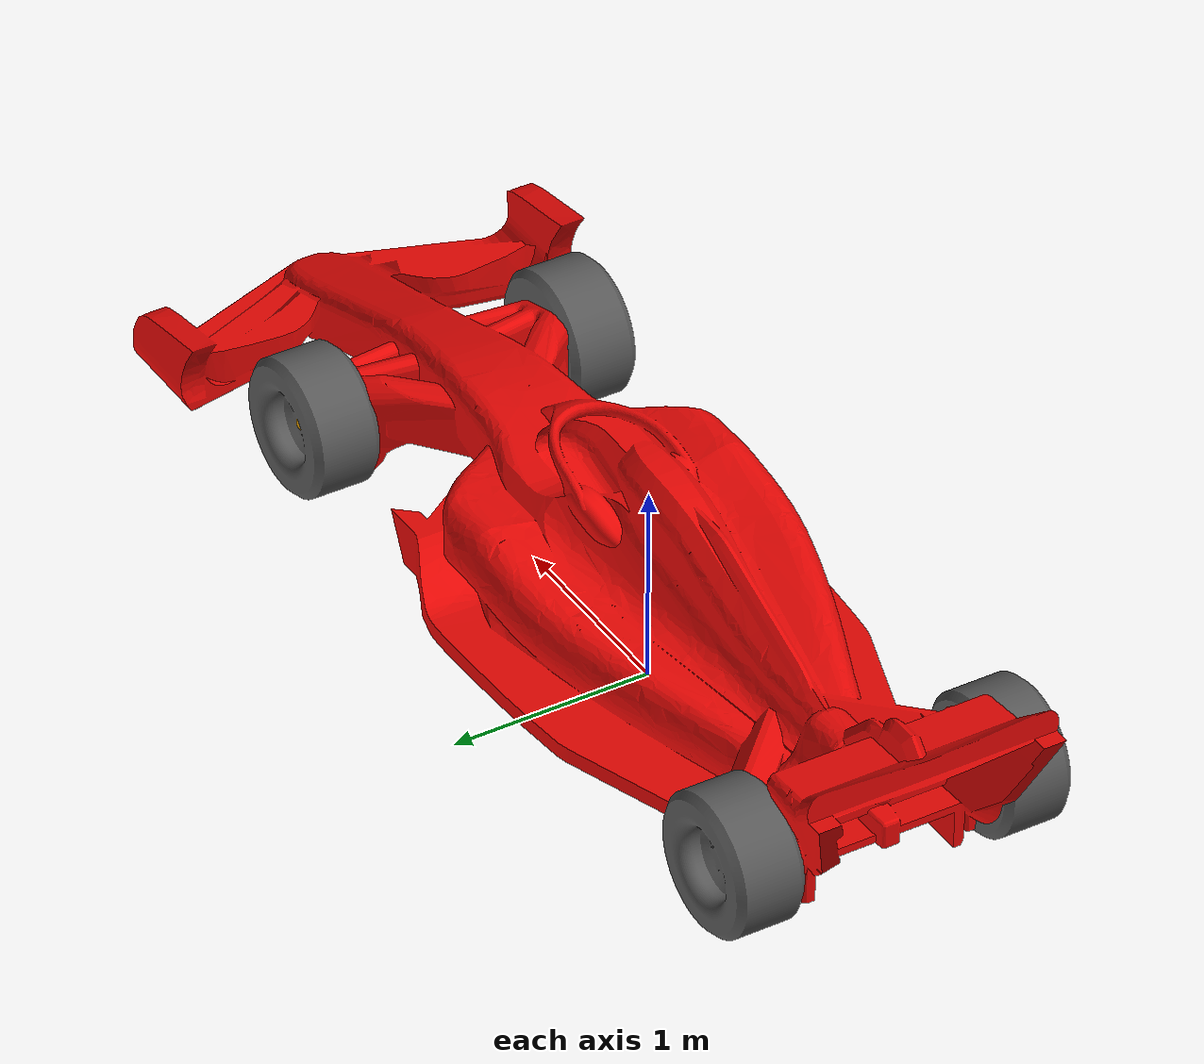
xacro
<?xml version="1.0"?>

<robot xmlns:xacro="http://www.ros.org/wiki/xacro" name="formula">

    <xacro:arg name="gpu" default="false"/>
    <xacro:property name="gpu" value="$(arg gpu)" />
    <xacro:arg name="organize_cloud" default="false"/>
    <xacro:property name="organize_cloud" value="$(arg organize_cloud)" />

    <!-- Include -->
    <xacro:include filename="$(find spawn_car)/model/formula/urdf/bases/formula_body.urdf.xacro"/>
    <xacro:include filename="$(find spawn_car)/model/formula/urdf/wheels/formula_suspension.urdf.xacro"/>
    <xacro:include filename="$(find spawn_car)/model/formula/urdf/vehicle_properties.urdf.xacro"/>
    <xacro:include filename="$(find spawn_car)/model/formula/urdf/sensors/camera.urdf.xacro"/>
    <xacro:include filename="$(find spawn_car)/model/formula/urdf/sensors/vlp-16.urdf.xacro"/>
    <!-- Robots Elements -->
    <xacro:formula_base name="formula"/>
    <xacro:Front_Right_Wheel/>
    <xacro:Front_Left_Wheel/>
    <xacro:Rear_Right_Wheel/>
    <xacro:Rear_Left_Wheel/>

      <gazebo>
        <plugin name="p3d" filename="libgazebo_ros_p3d.so">
          <bodyName>chassis</bodyName>
          <topicName>base_pose_ground_truth</topicName>
          <frameName>map</frameName>
          <updateRate>100.0</updateRate>
        </plugin>
      </gazebo>

      <gazebo>
        <plugin name="gazebo_ros_control" filename="libgazebo_ros_control.so">
          <robotNamespace>/formula_model</robotNamespace>
          <!--The two lines below came from: https://answers.ros.org/question/292444/gazebo_ros_control-plugin-gazeboroscontrolplugin-missing-legacymodens-defaultrobothwsim/-->
          <robotSimType>gazebo_ros_control/DefaultRobotHWSim</robotSimType>
          <legacyModeNS>true</legacyModeNS>
        </plugin>
      </gazebo>

      <transmission name="front_left_steer_trans">
        <type>transmission_interface/SimpleTransmission</type>
        <actuator name="left_steer">
          <mechanicalReduction>1</mechanicalReduction>
        </actuator>
          <joint name="front_left_steer_joint">

          <!--this is a  mechanism for ros_control, it can be position, velocity, effort or something
              to communicate with hardware. See: https://wiki.ros.org/ros_control-->
            <hardwareInterface>hardware_interface/PositionJointInterface</hardwareInterface>
          </joint>
      </transmission>

      <transmission name="front_right_steer_trans">
        <type>transmission_interface/SimpleTransmission</type>
        <actuator name="right_steer">
          <mechanicalReduction>1</mechanicalReduction>
        </actuator>
          <joint name="front_right_steer_joint">
            <hardwareInterface>hardware_interface/PositionJointInterface</hardwareInterface>
          </joint>
      </transmission>

      <transmission name="rear_left_wheel_trans">
        <type>transmission_interface/SimpleTransmission</type>
        <actuator name="rear_left_motor">
          <mechanicalReduction>1</mechanicalReduction>
        </actuator>
          <joint name="rear_left_wheel_joint">
            <hardwareInterface>hardware_interface/VelocityJointInterface</hardwareInterface>
          </joint>
      </transmission>

      <transmission name="rear_right_wheel_trans">
        <type>transmission_interface/SimpleTransmission</type>
        <actuator name="rear_right_motor">
          <mechanicalReduction>1</mechanicalReduction>
        </actuator>
          <joint name="rear_right_wheel_joint">
            <hardwareInterface>hardware_interface/VelocityJointInterface</hardwareInterface>
          </joint>
      </transmission>

</robot>

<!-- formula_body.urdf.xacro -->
<!--
Created on Thu Jan 18 2024

@author: hifzhil
-->
<robot xmlns:xacro="http://www.ros.org/wiki/xacro" name="formula">
    <xacro:include filename="$(find spawn_car)/model/formula/urdf/vehicle_properties.urdf.xacro"/>
    <xacro:include filename="$(find spawn_car)/model/formula/urdf/bases/formula_body.gazebo.xacro"/>

    <material name="chassis_mat">
        <color rgba="0.2 0.2 0.2 1"/>
        <!-- grey -->
    </material>

    <material name="sf24_livery" >
        <color rgba="0.91 0.03 0.02 1.0" />
    </material>

    <xacro:macro name="formula_base" params="name">
        <link name="dummy">
            <visual>
                <origin xyz="0 0 0" rpy="0 0 0"/>
                <geometry>
                    <box size="0.001 0.001 0.001"/>
                </geometry>
            </visual>
        </link>

        <joint name="world_to_vehicle_center" type="fixed">
            <parent link="dummy"/>
            <child link="chassis"/>
            <origin xyz="0.0 0.0 ${ground_clearance + (chassis_thickness/2)}"/>
            <axis xyz = "0 0 1"/>
        </joint>

        <link name="chassis">

            <visual>
                <origin xyz="0.42 -0.015 0.22" rpy="0 0 ${degree_270}"/>
                <geometry>
                  <mesh filename="file://$(find spawn_car)/model/formula/meshes/F1_2023_halo_livery.stl" scale="0.03 0.03 0.03"/>
                </geometry>

                <material name="sf24_livery" >
                    <color rgba="0.91 0.03 0.02 1.0" />
                </material>
            </visual>

            <collision>
                <origin xyz="0.42 -0.015 0.0" rpy="0 0 0"/>
                <geometry>
                    <box size="${car_length} ${car_width} ${car_height - 0.6} "/>
                </geometry>
                <material name="sf24_livery" >
                    <color rgba="0.91 0.03 0.02 1.0" />
                </material>
            </collision>

            <xacro:inertia_of_body/>
        </link>
    </xacro:macro>

</robot>

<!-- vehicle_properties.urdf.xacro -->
<!--
Created on Thu Jan 18 12:02:12 2024

@author: hifzhil
-->

<robot name="formula_properties" xmlns:xacro="http://www.ros.org/wiki/xacro">
    <!-- my name is formula-->

    <!-- CONSTANT -->
    <xacro:property name = "degree_90" value="1.57079633"/>
    <xacro:property name = "degree_180" value="3.14159265"/>
    <xacro:property name = "degree_270" value="4.71239"/>
    <xacro:property name = "degree_360" value="6.28319"/>

    <xacro:property name="car_length" value="5.688" />
    <xacro:property name="car_width" value="2.00" />
    <xacro:property name="car_height" value="0.95" />
    <xacro:property name="car_mass" value="798.0" />

    <xacro:property name="front_overhang" value="1.225" />
    <xacro:property name="rear_overhang" value="0.810" />

    <!-- misalkan formula adalah balok -->
    <xacro:property name="vehicle_volume" value="${car_length*car_width*car_height}"/>

    <xacro:property name="ground_clearance" value="0.036" />
    <xacro:property name="wheel_base" value="3.663" />
    <!-- chassis -->
    <xacro:property name="chassis_width" value="2.00" />
    <xacro:property name="chassis_length" value="5.688" />
    <xacro:property name="chassis_thickness" value="0.95" />
    <xacro:property name="chassis_mass" value="798.0" />
       <!-- variable -->

    <!-- aluminium density is 2.7 g/cm³ or 2700 kg/m3-->
    <xacro:property name="body_density" value="2700.0" />
    <!-- density of all tyre brands is nearly the same which is around 1.1 gr/cm3 or 1100 kg/m3 -->
    <xacro:property name="wheel_density" value="1100.0" />

    <!-- fixed transformation
        this value on rad. 1.570795 is a phi/2
    -->
    <xacro:property name="wheel_cylindrical_transform" value="1.570795" />

    <!-- mass -->
    <!-- let assume the mass of box same as half aluminium at it size-->
    <xacro:property name="body_mass" value="${body_density*body_volume*(1/2)}"/>
    <xacro:property name="wheel_mass" value="${wheel_density*wheel_volume}"/>

    <xacro:property name="front_tyre_radius" value="0.360"/>
    <xacro:property name="front_tyre_width" value="0.305"/>
    <xacro:property name="front_tyre_mass" value="10.0"/>

    <xacro:property name="rear_tyre_radius" value="0.360"/>
    <xacro:property name="rear_tyre_width" value="0.405"/>
    <xacro:property name="rear_tyre_mass" value="10.0"/>

    <xacro:property name="front_track" value="1.35" />
    <xacro:property name="rear_track" value="1.35" />

    <!-- moment inertia of wheel -->
    <xacro:property name="Iz_wheel" value="${0.5*wheel_mass*wheel_radius*wheel_radius}"/>
    <xacro:property name="I_wheel" value="${1/12*wheel_mass*(3*wheel_radius*wheel_radius + wheel_length*wheel_length)}"/>

  <!-- this is macro that we can call it anywhere on code
      it defines all inertia component on the wheel
  -->
    <xacro:macro name="inertia_of_wheel">
        <inertial>
            <origin rpy="0 0 0" xyz="0 0 0"/>
            <mass value="${wheel_mass}"/>
            <inertia
                ixx="${I_wheel}"
                ixy="0.0"
                ixz="0.0"
                iyy="${I_wheel}"
                iyz="0.0"
                izz="${Iz_wheel}"
            />
        </inertial>
    </xacro:macro>

    <xacro:macro name="inertia_of_body">
        <inertial>
            <origin rpy="0 0 0" xyz="0 0 0"/>
            <mass value="${chassis_mass}"/>
            <inertia
                ixy="0.0"
                ixz="0.0"
                iyz="0.0"
                ixx = "${(1/12)*chassis_mass*(chassis_width*chassis_width + chassis_thickness*chassis_thickness)}"
                iyy = "${(1/12)*chassis_mass*(chassis_length*chassis_length + chassis_thickness*chassis_thickness)}"
                izz = "${(1/12)*chassis_mass*(chassis_length*chassis_length + chassis_width*chassis_width)}"
            />
        </inertial>
    </xacro:macro>
</robot>

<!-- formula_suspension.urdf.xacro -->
<!--
Created on Sat Jan 20 2024

@author: hifzhil
-->
<robot xmlns:xacro="http://www.ros.org/wiki/xacro" name="suspension urdf">

    <material name="pirelli" >
        <color rgba="0.35 0.35 0.35 1.0" />
    </material>

    <xacro:include filename="$(find spawn_car)/model/formula/urdf/wheels/suspension.gazebo.xacro"/>
    <xacro:include filename="$(find spawn_car)/model/formula/urdf/vehicle_properties.urdf.xacro"/>

    <xacro:property name="Iz_rear_wheel" value="${0.5*rear_tyre_mass*rear_tyre_radius*rear_tyre_radius}"/>
    <xacro:property name="I_rear_wheel" value="${1/12*rear_tyre_mass*(3*rear_tyre_radius*rear_tyre_radius + rear_tyre_width*rear_tyre_width)}"/>

    <xacro:property name="Iz_front_wheel" value="${0.5*front_tyre_mass*front_tyre_radius*front_tyre_radius}"/>
    <xacro:property name="I_front_wheel" value="${1/12*front_tyre_mass*(3*front_tyre_radius*front_tyre_radius + front_tyre_width*front_tyre_width)}"/>

    <xacro:macro name="inertia_of_front_wheel">
        <inertial>
          <origin rpy="0 0 0" xyz="0 0 0"/>
          <mass value="${front_tyre_mass}"/>
          <inertia
            ixx="${I_front_wheel}"
            ixy="0.0"
            ixz="0.0"
            iyy="${I_front_wheel}"
            iyz="0.0"
            izz="${Iz_front_wheel}"
          />
        </inertial>
    </xacro:macro>

    <xacro:macro name="inertia_of_rear_wheel">
        <inertial>
          <origin rpy="0 0 0" xyz="0 0 0"/>
          <mass value="${rear_tyre_mass}"/>
          <inertia
            ixx="${I_rear_wheel}"
            ixy="0.0"
            ixz="0.0"
            iyy="${I_rear_wheel}"
            iyz="0.0"
            izz="${Iz_rear_wheel}"
          />
        </inertial>
    </xacro:macro>

    <xacro:macro name="Front_Left_Wheel">
        <joint name="front_left_steer_joint" type="revolute">
            <parent link="chassis"/>
            <child link="fl_axle"/>
            <origin rpy="${degree_90} 0 0" xyz="${wheel_base/2} ${front_track/2} 0"/>
            <axis xyz="0 1 0"/>
            <limit lower="-0.785398" upper="0.785398" effort="500000" velocity="250"/>
        </joint>
        <joint name="front_left_wheel_joint" type="continuous">
            <parent link="fl_axle"/>
            <child link="front_left_wheel"/>
            <origin xyz="0 0 0" rpy="0 0 0"/>
            <axis xyz="0 0 -1"/>
            <limit effort="1000" velocity="1000"/>
            <dynamics damping="1.0" friction="1.0"/>
        </joint>
    </xacro:macro>

    <xacro:macro name="Front_Right_Wheel">
        <joint name="front_right_steer_joint" type="revolute">
            <parent link="chassis"/>
            <child link="fr_axle"/>
            <origin rpy="${degree_90} 0 0" xyz="${wheel_base/2} ${-front_track/2} 0"/>
            <axis xyz="0 1 0"/>
            <limit lower="-0.785398" upper="0.785398" effort="500000" velocity="250"/>
        </joint>
        <joint name="front_right_wheel_joint" type="continuous">
            <parent link="fr_axle"/>
            <child link="front_right_wheel"/>
            <origin xyz="0 0 0" rpy="0 0 0"/>
            <axis xyz="0 0 -1"/>
            <limit effort="1000" velocity="1000"/>
            <dynamics damping="1.0" friction="1.0"/>
        </joint>
    </xacro:macro>

    <xacro:macro name="Rear_Left_Wheel">
        <joint name="rear_left_wheel_joint" type="continuous">
            <parent link="chassis"/>
            <child link="rear_left_wheel"/>
            <origin rpy="${degree_90} 0 0" xyz="${-wheel_base/2} ${rear_track/2} 0"/>
            <axis xyz="0 0 -1"/>
            <limit effort="1000" velocity="1000"/>
            <dynamics damping="1.0" friction="1.0"/>
        </joint>
    </xacro:macro>

    <xacro:macro name="Rear_Right_Wheel">
        <joint name="rear_right_wheel_joint" type="continuous">
            <parent link="chassis"/>
            <child link="rear_right_wheel"/>
            <origin rpy="${degree_90} 0 0" xyz="${-wheel_base/2} ${-rear_track/2} 0"/>
            <axis xyz="0 0 -1"/>
            <limit effort="1000" velocity="1000"/>
            <dynamics damping="1.0" friction="1.0"/>
        </joint>
    </xacro:macro>

    <link name="fl_axle">
        <inertial>
          <mass value="1"/>
          <origin xyz="0 0 0"/>
          <inertia ixx="0.004" ixy="0.0" ixz="0.0" iyy="0.004" iyz="0.0" izz="0.004"/>
        </inertial>
        <collision>
            <geometry>
              <box size="0.05 0.05 0.15" />
            </geometry>
        </collision>
        <visual>
            <geometry>
              <box size="0.05 0.05 0.15" />
            </geometry>
        </visual>
    </link>

    <link name="fr_axle">
        <inertial>
            <mass value="1"/>
            <origin xyz="0 0 0"/>
            <inertia ixx="0.004" ixy="0.0" ixz="0.0" iyy="0.004" iyz="0.0" izz="0.004"/>
        </inertial>
        <collision>
            <geometry>
              <box size="0.05 0.05 0.15" />
            </geometry>
        </collision>
        <visual>
            <geometry>
              <box size="0.05 0.05 0.15" />
            </geometry>
        </visual>
    </link>

    <link name="front_right_wheel">
        <visual>
            <origin rpy="0 0 0" xyz="0.0 0.0 0.0"/>

            <geometry>
                <mesh filename="file://$(find spawn_car)/model/formula/meshes/F1_2023_halo_wheel.stl" scale="0.034 0.034 0.034"/>
            </geometry>

            <material name="pirelli"/>
        </visual>
        <collision>
            <origin rpy="0 0 0" xyz="0 0 0"/>

            <geometry>
                <cylinder length="${front_tyre_width}" radius="${front_tyre_radius}"/>
            </geometry>

            <material name="pirelli"/>
        </collision>
        <xacro:inertia_of_front_wheel/>
    </link>

    <link name="front_left_wheel">
        <visual>
            <origin rpy="0 ${degree_180} 0" xyz="0 0 0"/>

            <geometry>
                <mesh filename="file://$(find spawn_car)/model/formula/meshes/F1_2023_halo_wheel.stl" scale="0.034 0.034 0.034"/>
            </geometry>

            <material name="pirelli"/>
        </visual>
        <collision>
            <origin rpy="0 0 0" xyz="0 0 0"/>

            <geometry>
                <cylinder length="${front_tyre_width}" radius="${front_tyre_radius}"/>
            </geometry>

            <material name="pirelli"/>
        </collision>
        <xacro:inertia_of_front_wheel/>
    </link>

    <link name="rear_right_wheel">
        <visual>
            <origin rpy="0 0 0" xyz="0 0 0"/>

            <geometry>
                <mesh filename="file://$(find spawn_car)/model/formula/meshes/F1_2023_halo_wheel.stl" scale="0.034 0.034 0.034"/>
            </geometry>

            <material name="pirelli"/>
        </visual>
        <collision>
            <origin rpy="0 0 0" xyz="0 0 0"/>

            <geometry>
                <cylinder length="${rear_tyre_width}" radius="${rear_tyre_radius}"/>
            </geometry>

            <material name="pirelli"/>
        </collision>
        <xacro:inertia_of_rear_wheel/>
    </link>

    <link name="rear_left_wheel">
        <visual>
            <origin rpy="${degree_180} 0 0" xyz="0 0 0"/>

            <geometry>
                <mesh filename="file://$(find spawn_car)/model/formula/meshes/F1_2023_halo_wheel.stl" scale="0.034 0.034 0.034"/>
            </geometry>

            <material name="pirelli"/>
        </visual>
        <collision>
            <origin rpy="0 0 0" xyz="0 0 0"/>

            <geometry>
                <cylinder length="${rear_tyre_width}" radius="${rear_tyre_radius}"/>
            </geometry>

            <material name="pirelli"/>
        </collision>
        <xacro:inertia_of_rear_wheel/>
    </link>
</robot>
